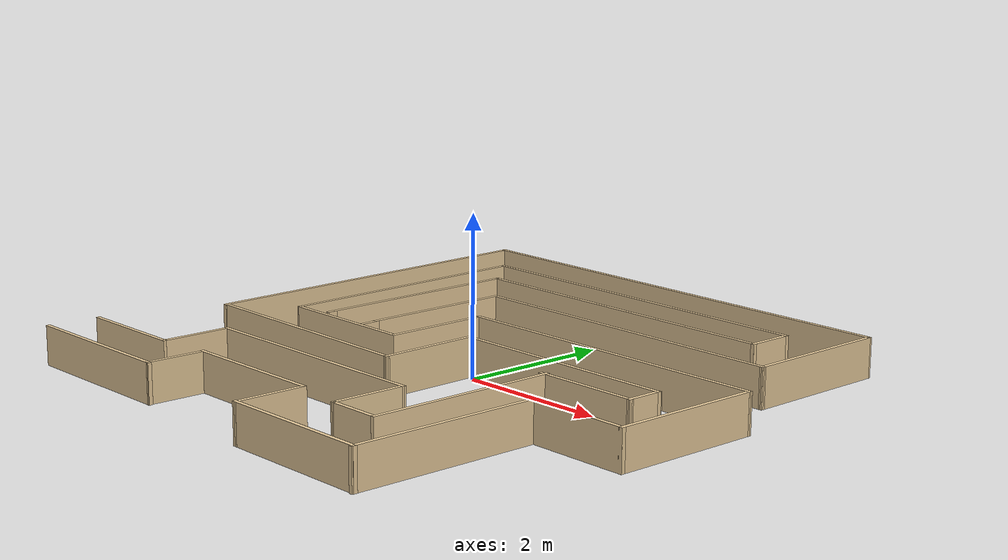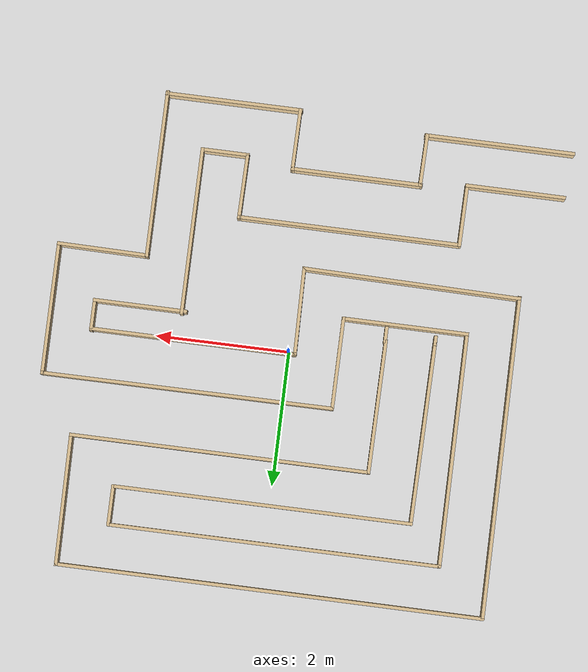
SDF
<?xml version='1.0'?>
<sdf version='1.7'>
  <model name='Maze_Project_II'>
    <pose>-0.116242 -0.016981 0 0 -0 0</pose>
    <link name='Wall_0'>
      <collision name='Wall_0_Collision'>
        <geometry>
          <box>
            <size>2.25 0.05 0.5</size>
          </box>
        </geometry>
        <pose>0 0 0.25 0 -0 0</pose>
      </collision>
      <visual name='Wall_0_Visual'>
        <pose>0 0 0.25 0 -0 0</pose>
        <geometry>
          <box>
            <size>2.25 0.05 0.5</size>
          </box>
        </geometry>
        <material>
          <script>
            <uri>file://media/materials/scripts/gazebo.material</uri>
            <name>Gazebo/Grey</name>
          </script>
          <ambient>0.921569 0.807843 0.615686 1</ambient>
        </material>
        <meta>
          <layer>0</layer>
        </meta>
      </visual>
      <pose>-2.60976 -3.43602 0 0 -0 0</pose>
    </link>
    <link name='Wall_1'>
      <collision name='Wall_1_Collision'>
        <geometry>
          <box>
            <size>0.796089 0.05 0.5</size>
          </box>
        </geometry>
        <pose>0 0 0.25 0 -0 0</pose>
      </collision>
      <visual name='Wall_1_Visual'>
        <pose>0 0 0.25 0 -0 0</pose>
        <geometry>
          <box>
            <size>0.796089 0.05 0.5</size>
          </box>
        </geometry>
        <material>
          <script>
            <uri>file://media/materials/scripts/gazebo.material</uri>
            <name>Gazebo/Grey</name>
          </script>
          <ambient>0.921569 0.807843 0.615686 1</ambient>
        </material>
        <meta>
          <layer>0</layer>
        </meta>
      </visual>
      <pose>-1.51551 -3.06302 0 0 -0 1.55538</pose>
    </link>
    <link name='Wall_10'>
      <collision name='Wall_10_Collision'>
        <geometry>
          <box>
            <size>1.9 0.05 0.5</size>
          </box>
        </geometry>
        <pose>0 0 0.25 0 -0 0</pose>
      </collision>
      <visual name='Wall_10_Visual'>
        <pose>0 0 0.25 0 -0 0</pose>
        <geometry>
          <box>
            <size>1.9 0.05 0.5</size>
          </box>
        </geometry>
        <material>
          <script>
            <uri>file://media/materials/scripts/gazebo.material</uri>
            <name>Gazebo/Grey</name>
          </script>
          <ambient>0.921569 0.807843 0.615686 1</ambient>
        </material>
        <meta>
          <layer>0</layer>
        </meta>
      </visual>
      <pose>-1.55376 -0.575019 0 0 -0 3.14159</pose>
    </link>
    <link name='Wall_12'>
      <collision name='Wall_12_Collision'>
        <geometry>
          <box>
            <size>3.5235 0.05 0.5</size>
          </box>
        </geometry>
        <pose>0 0 0.25 0 -0 0</pose>
      </collision>
      <visual name='Wall_12_Visual'>
        <pose>0 0 0.25 0 -0 0</pose>
        <geometry>
          <box>
            <size>3.5235 0.05 0.5</size>
          </box>
        </geometry>
        <material>
          <script>
            <uri>file://media/materials/scripts/gazebo.material</uri>
            <name>Gazebo/Grey</name>
          </script>
          <ambient>0.921569 0.807843 0.615686 1</ambient>
        </material>
        <meta>
          <layer>0</layer>
        </meta>
      </visual>
      <pose>-2.49026 1.16173 0 0 -0 1.57742</pose>
    </link>
    <link name='Wall_13'>
      <collision name='Wall_13_Collision'>
        <geometry>
          <box>
            <size>5 0.05 0.5</size>
          </box>
        </geometry>
        <pose>0 0 0.25 0 -0 0</pose>
      </collision>
      <visual name='Wall_13_Visual'>
        <pose>0 0 0.25 0 -0 0</pose>
        <geometry>
          <box>
            <size>5 0.05 0.5</size>
          </box>
        </geometry>
        <material>
          <script>
            <uri>file://media/materials/scripts/gazebo.material</uri>
            <name>Gazebo/Grey</name>
          </script>
          <ambient>0.921569 0.807843 0.615686 1</ambient>
        </material>
        <meta>
          <layer>0</layer>
        </meta>
      </visual>
      <pose>-0.026758 2.89848 0 0 -0 0</pose>
    </link>
    <link name='Wall_14'>
      <collision name='Wall_14_Collision'>
        <geometry>
          <box>
            <size>0.624115 0.05 0.5</size>
          </box>
        </geometry>
        <pose>0 0 0.25 0 -0 0</pose>
      </collision>
      <visual name='Wall_14_Visual'>
        <pose>0 0 0.25 0 -0 0</pose>
        <geometry>
          <box>
            <size>0.624115 0.05 0.5</size>
          </box>
        </geometry>
        <material>
          <script>
            <uri>file://media/materials/scripts/gazebo.material</uri>
            <name>Gazebo/Grey</name>
          </script>
          <ambient>0.921569 0.807843 0.615686 1</ambient>
        </material>
        <meta>
          <layer>0</layer>
        </meta>
      </visual>
      <pose>2.44824 2.61148 0 0 -0 -1.5708</pose>
    </link>
    <link name='Wall_15'>
      <collision name='Wall_15_Collision'>
        <geometry>
          <box>
            <size>4.5 0.05 0.5</size>
          </box>
        </geometry>
        <pose>0 0 0.25 0 -0 0</pose>
      </collision>
      <visual name='Wall_15_Visual'>
        <pose>0 0 0.25 0 -0 0</pose>
        <geometry>
          <box>
            <size>4.5 0.05 0.5</size>
          </box>
        </geometry>
        <material>
          <script>
            <uri>file://media/materials/scripts/gazebo.material</uri>
            <name>Gazebo/Grey</name>
          </script>
          <ambient>0.921569 0.807843 0.615686 1</ambient>
        </material>
        <meta>
          <layer>0</layer>
        </meta>
      </visual>
      <pose>0.223242 2.32473 0 0 -0 3.14148</pose>
    </link>
    <link name='Wall_16'>
      <collision name='Wall_16_Collision'>
        <geometry>
          <box>
            <size>2.74272 0.05 0.5</size>
          </box>
        </geometry>
        <pose>0 0 0.25 0 -0 0</pose>
      </collision>
      <visual name='Wall_16_Visual'>
        <pose>0 0 0.25 0 -0 0</pose>
        <geometry>
          <box>
            <size>2.74272 0.05 0.5</size>
          </box>
        </geometry>
        <material>
          <script>
            <uri>file://media/materials/scripts/gazebo.material</uri>
            <name>Gazebo/Grey</name>
          </script>
          <ambient>0.921569 0.807843 0.615686 1</ambient>
        </material>
        <meta>
          <layer>0</layer>
        </meta>
      </visual>
      <pose>-2.01326 0.978481 0 0 -0 -1.57934</pose>
    </link>
    <link name='Wall_18'>
      <collision name='Wall_18_Collision'>
        <geometry>
          <box>
            <size>1.5 0.05 0.5</size>
          </box>
        </geometry>
        <pose>0 0 0.25 0 -0 0</pose>
      </collision>
      <visual name='Wall_18_Visual'>
        <pose>0 0 0.25 0 -0 0</pose>
        <geometry>
          <box>
            <size>1.5 0.05 0.5</size>
          </box>
        </geometry>
        <material>
          <script>
            <uri>file://media/materials/scripts/gazebo.material</uri>
            <name>Gazebo/Grey</name>
          </script>
          <ambient>0.921569 0.807843 0.615686 1</ambient>
        </material>
        <meta>
          <layer>0</layer>
        </meta>
      </visual>
      <pose>-2.93076 -2.77002 0 0 -0 0</pose>
    </link>
    <link name='Wall_19'>
      <collision name='Wall_19_Collision'>
        <geometry>
          <box>
            <size>0.93152 0.05 0.5</size>
          </box>
        </geometry>
        <pose>0 0 0.25 0 -0 0</pose>
      </collision>
      <visual name='Wall_19_Visual'>
        <pose>0 0 0.25 0 -0 0</pose>
        <geometry>
          <box>
            <size>0.93152 0.05 0.5</size>
          </box>
        </geometry>
        <material>
          <script>
            <uri>file://media/materials/scripts/gazebo.material</uri>
            <name>Gazebo/Grey</name>
          </script>
          <ambient>0.921569 0.807843 0.615686 1</ambient>
        </material>
        <meta>
          <layer>0</layer>
        </meta>
      </visual>
      <pose>-2.20276 -2.31777 0 0 -0 1.56399</pose>
    </link>
    <link name='Wall_2'>
      <collision name='Wall_2_Collision'>
        <geometry>
          <box>
            <size>1.9655 0.05 0.5</size>
          </box>
        </geometry>
        <pose>0 0 0.25 0 -0 0</pose>
      </collision>
      <visual name='Wall_2_Visual'>
        <pose>0 0 0.25 0 -0 0</pose>
        <geometry>
          <box>
            <size>1.9655 0.05 0.5</size>
          </box>
        </geometry>
        <material>
          <script>
            <uri>file://media/materials/scripts/gazebo.material</uri>
            <name>Gazebo/Grey</name>
          </script>
          <ambient>0.921569 0.807843 0.615686 1</ambient>
        </material>
        <meta>
          <layer>0</layer>
        </meta>
      </visual>
      <pose>-0.563508 -2.69002 0 0 -0 0</pose>
    </link>
    <link name='Wall_20'>
      <collision name='Wall_20_Collision'>
        <geometry>
          <box>
            <size>3.3535 0.05 0.5</size>
          </box>
        </geometry>
        <pose>0 0 0.25 0 -0 0</pose>
      </collision>
      <visual name='Wall_20_Visual'>
        <pose>0 0 0.25 0 -0 0</pose>
        <geometry>
          <box>
            <size>3.3535 0.05 0.5</size>
          </box>
        </geometry>
        <material>
          <script>
            <uri>file://media/materials/scripts/gazebo.material</uri>
            <name>Gazebo/Grey</name>
          </script>
          <ambient>0.921569 0.807843 0.615686 1</ambient>
        </material>
        <meta>
          <layer>0</layer>
        </meta>
      </visual>
      <pose>-0.548008 -1.87702 0 0 -0 0</pose>
    </link>
    <link name='Wall_21'>
      <collision name='Wall_21_Collision'>
        <geometry>
          <box>
            <size>0.982571 0.05 0.5</size>
          </box>
        </geometry>
        <pose>0 0 0.25 0 -0 0</pose>
      </collision>
      <visual name='Wall_21_Visual'>
        <pose>0 0 0.25 0 -0 0</pose>
        <geometry>
          <box>
            <size>0.982571 0.05 0.5</size>
          </box>
        </geometry>
        <material>
          <script>
            <uri>file://media/materials/scripts/gazebo.material</uri>
            <name>Gazebo/Grey</name>
          </script>
          <ambient>0.921569 0.807843 0.615686 1</ambient>
        </material>
        <meta>
          <layer>0</layer>
        </meta>
      </visual>
      <pose>1.09799 -2.34327 0 0 -0 -1.58313</pose>
    </link>
    <link name='Wall_22'>
      <collision name='Wall_22_Collision'>
        <geometry>
          <box>
            <size>0.727 0.05 0.5</size>
          </box>
        </geometry>
        <pose>0 0 0.25 0 -0 0</pose>
      </collision>
      <visual name='Wall_22_Visual'>
        <pose>0 0 0.25 0 -0 0</pose>
        <geometry>
          <box>
            <size>0.727 0.05 0.5</size>
          </box>
        </geometry>
        <material>
          <script>
            <uri>file://media/materials/scripts/gazebo.material</uri>
            <name>Gazebo/Grey</name>
          </script>
          <ambient>0.921569 0.807843 0.615686 1</ambient>
        </material>
        <meta>
          <layer>0</layer>
        </meta>
      </visual>
      <pose>1.43074 -2.80952 0 0 -0 0</pose>
    </link>
    <link name='Wall_24'>
      <collision name='Wall_24_Collision'>
        <geometry>
          <box>
            <size>1.408 0.05 0.5</size>
          </box>
        </geometry>
        <pose>0 0 0.25 0 -0 0</pose>
      </collision>
      <visual name='Wall_24_Visual'>
        <pose>0 0 0.25 0 -0 0</pose>
        <geometry>
          <box>
            <size>1.408 0.05 0.5</size>
          </box>
        </geometry>
        <material>
          <script>
            <uri>file://media/materials/scripts/gazebo.material</uri>
            <name>Gazebo/Grey</name>
          </script>
          <ambient>0.921569 0.807843 0.615686 1</ambient>
        </material>
        <meta>
          <layer>0</layer>
        </meta>
      </visual>
      <pose>2.39324 -0.382769 0 0 -0 -0.000368</pose>
    </link>
    <link name='Wall_25'>
      <collision name='Wall_25_Collision'>
        <geometry>
          <box>
            <size>0.4885 0.05 0.5</size>
          </box>
        </geometry>
        <pose>0 0 0.25 0 -0 0</pose>
      </collision>
      <visual name='Wall_25_Visual'>
        <pose>0 0 0.25 0 -0 0</pose>
        <geometry>
          <box>
            <size>0.4885 0.05 0.5</size>
          </box>
        </geometry>
        <material>
          <script>
            <uri>file://media/materials/scripts/gazebo.material</uri>
            <name>Gazebo/Grey</name>
          </script>
          <ambient>0.921569 0.807843 0.615686 1</ambient>
        </material>
        <meta>
          <layer>0</layer>
        </meta>
      </visual>
      <pose>3.07224 -0.163769 0 0 -0 1.5708</pose>
    </link>
    <link name='Wall_26'>
      <collision name='Wall_26_Collision'>
        <geometry>
          <box>
            <size>3.1005 0.05 0.5</size>
          </box>
        </geometry>
        <pose>0 0 0.25 0 -0 0</pose>
      </collision>
      <visual name='Wall_26_Visual'>
        <pose>0 0 0.25 0 -0 0</pose>
        <geometry>
          <box>
            <size>3.1005 0.05 0.5</size>
          </box>
        </geometry>
        <material>
          <script>
            <uri>file://media/materials/scripts/gazebo.material</uri>
            <name>Gazebo/Grey</name>
          </script>
          <ambient>0.921569 0.807843 0.615686 1</ambient>
        </material>
        <meta>
          <layer>0</layer>
        </meta>
      </visual>
      <pose>1.54699 0.043981 0 0 -0 3.14159</pose>
    </link>
    <link name='Wall_27'>
      <collision name='Wall_27_Collision'>
        <geometry>
          <box>
            <size>1.33371 0.05 0.5</size>
          </box>
        </geometry>
        <pose>0 0 0.25 0 -0 0</pose>
      </collision>
      <visual name='Wall_27_Visual'>
        <pose>0 0 0.25 0 -0 0</pose>
        <geometry>
          <box>
            <size>1.33371 0.05 0.5</size>
          </box>
        </geometry>
        <material>
          <script>
            <uri>file://media/materials/scripts/gazebo.material</uri>
            <name>Gazebo/Grey</name>
          </script>
          <ambient>0.921569 0.807843 0.615686 1</ambient>
        </material>
        <meta>
          <layer>0</layer>
        </meta>
      </visual>
      <pose>0.033242 -0.597769 0 0 -0 -1.55288</pose>
    </link>
    <link name='Wall_28'>
      <collision name='Wall_28_Collision'>
        <geometry>
          <box>
            <size>3.28007 0.05 0.5</size>
          </box>
        </geometry>
        <pose>0 0 0.25 0 -0 0</pose>
      </collision>
      <visual name='Wall_28_Visual'>
        <pose>0 0 0.25 0 -0 0</pose>
        <geometry>
          <box>
            <size>3.28007 0.05 0.5</size>
          </box>
        </geometry>
        <material>
          <script>
            <uri>file://media/materials/scripts/gazebo.material</uri>
            <name>Gazebo/Grey</name>
          </script>
          <ambient>0.921569 0.807843 0.615686 1</ambient>
        </material>
        <meta>
          <layer>0</layer>
        </meta>
      </visual>
      <pose>-1.57026 -1.21777 0 0 -0 3.12813</pose>
    </link>
    <link name='Wall_3'>
      <collision name='Wall_3_Collision'>
        <geometry>
          <box>
            <size>0.931136 0.05 0.5</size>
          </box>
        </geometry>
        <pose>0 0 0.25 0 -0 0</pose>
      </collision>
      <visual name='Wall_3_Visual'>
        <pose>0 0 0.25 0 -0 0</pose>
        <geometry>
          <box>
            <size>0.931136 0.05 0.5</size>
          </box>
        </geometry>
        <material>
          <script>
            <uri>file://media/materials/scripts/gazebo.material</uri>
            <name>Gazebo/Grey</name>
          </script>
          <ambient>0.921569 0.807843 0.615686 1</ambient>
        </material>
        <meta>
          <layer>0</layer>
        </meta>
      </visual>
      <pose>0.401992 -3.13052 0 0 -0 -1.57931</pose>
    </link>
    <link name='Wall_31'>
      <collision name='Wall_31_Collision'>
        <geometry>
          <box>
            <size>6.42651 0.05 0.5</size>
          </box>
        </geometry>
        <pose>0 0 0.25 0 -0 0</pose>
      </collision>
      <visual name='Wall_31_Visual'>
        <pose>0 0 0.25 0 -0 0</pose>
        <geometry>
          <box>
            <size>6.42651 0.05 0.5</size>
          </box>
        </geometry>
        <material>
          <script>
            <uri>file://media/materials/scripts/gazebo.material</uri>
            <name>Gazebo/Grey</name>
          </script>
          <ambient>0.921569 0.807843 0.615686 1</ambient>
        </material>
        <meta>
          <layer>0</layer>
        </meta>
      </visual>
      <pose>-0.044008 3.58248 0 0 -0 -0.001725</pose>
    </link>
    <link name='Wall_32'>
      <collision name='Wall_32_Collision'>
        <geometry>
          <box>
            <size>1.98113 0.05 0.5</size>
          </box>
        </geometry>
        <pose>0 0 0.25 0 -0 0</pose>
      </collision>
      <visual name='Wall_32_Visual'>
        <pose>0 0 0.25 0 -0 0</pose>
        <geometry>
          <box>
            <size>1.98113 0.05 0.5</size>
          </box>
        </geometry>
        <material>
          <script>
            <uri>file://media/materials/scripts/gazebo.material</uri>
            <name>Gazebo/Grey</name>
          </script>
          <ambient>0.921569 0.807843 0.615686 1</ambient>
        </material>
        <meta>
          <layer>0</layer>
        </meta>
      </visual>
      <pose>3.15524 2.61148 0 0 -0 -1.5594</pose>
    </link>
    <link name='Wall_33'>
      <collision name='Wall_33_Collision'>
        <geometry>
          <box>
            <size>4.5 0.05 0.5</size>
          </box>
        </geometry>
        <pose>0 0 0.25 0 -0 0</pose>
      </collision>
      <visual name='Wall_33_Visual'>
        <pose>0 0 0.25 0 -0 0</pose>
        <geometry>
          <box>
            <size>4.5 0.05 0.5</size>
          </box>
        </geometry>
        <material>
          <script>
            <uri>file://media/materials/scripts/gazebo.material</uri>
            <name>Gazebo/Grey</name>
          </script>
          <ambient>0.921569 0.807843 0.615686 1</ambient>
        </material>
        <meta>
          <layer>0</layer>
        </meta>
      </visual>
      <pose>0.941242 1.64598 0 0 -0 3.14159</pose>
    </link>
    <link name='Wall_34'>
      <collision name='Wall_34_Collision'>
        <geometry>
          <box>
            <size>2.0115 0.05 0.5</size>
          </box>
        </geometry>
        <pose>0 0 0.25 0 -0 0</pose>
      </collision>
      <visual name='Wall_34_Visual'>
        <pose>0 0 0.25 0 -0 0</pose>
        <geometry>
          <box>
            <size>2.0115 0.05 0.5</size>
          </box>
        </geometry>
        <material>
          <script>
            <uri>file://media/materials/scripts/gazebo.material</uri>
            <name>Gazebo/Grey</name>
          </script>
          <ambient>0.921569 0.807843 0.615686 1</ambient>
        </material>
        <meta>
          <layer>0</layer>
        </meta>
      </visual>
      <pose>-1.28926 0.664981 0 0 -0 -1.5764</pose>
    </link>
    <link name='Wall_5'>
      <collision name='Wall_5_Collision'>
        <geometry>
          <box>
            <size>2.5 0.05 0.5</size>
          </box>
        </geometry>
        <pose>0 0 0.25 0 -0 0</pose>
      </collision>
      <visual name='Wall_5_Visual'>
        <pose>0 0 0.25 0 -0 0</pose>
        <geometry>
          <box>
            <size>2.5 0.05 0.5</size>
          </box>
        </geometry>
        <material>
          <script>
            <uri>file://media/materials/scripts/gazebo.material</uri>
            <name>Gazebo/Grey</name>
          </script>
          <ambient>0.921569 0.807843 0.615686 1</ambient>
        </material>
        <meta>
          <layer>0</layer>
        </meta>
      </visual>
      <pose>2.39099 -2.36302 0 0 -0 1.57059</pose>
    </link>
    <link name='Wall_56'>
      <collision name='Wall_56_Collision'>
        <geometry>
          <box>
            <size>2.0575 0.05 0.5</size>
          </box>
        </geometry>
        <pose>0 0 0.25 0 -0 0</pose>
      </collision>
      <visual name='Wall_56_Visual'>
        <pose>0 0 0.25 0 -0 0</pose>
        <geometry>
          <box>
            <size>2.0575 0.05 0.5</size>
          </box>
        </geometry>
        <material>
          <script>
            <uri>file://media/materials/scripts/gazebo.material</uri>
            <name>Gazebo/Grey</name>
          </script>
          <ambient>0.921569 0.807843 0.615686 1</ambient>
        </material>
        <meta>
          <layer>0</layer>
        </meta>
      </visual>
      <pose>1.39049 -3.57102 0 0 -0 0</pose>
    </link>
    <link name='Wall_6'>
      <collision name='Wall_6_Collision'>
        <geometry>
          <box>
            <size>1.36858 0.05 0.5</size>
          </box>
        </geometry>
        <pose>0 0 0.25 0 -0 0</pose>
      </collision>
      <visual name='Wall_6_Visual'>
        <pose>0 0 0.25 0 -0 0</pose>
        <geometry>
          <box>
            <size>1.36858 0.05 0.5</size>
          </box>
        </geometry>
        <material>
          <script>
            <uri>file://media/materials/scripts/gazebo.material</uri>
            <name>Gazebo/Grey</name>
          </script>
          <ambient>0.921569 0.807843 0.615686 1</ambient>
        </material>
        <meta>
          <layer>0</layer>
        </meta>
      </visual>
      <pose>3.05024 -1.14502 0 0 -0 -0.010622</pose>
    </link>
    <link name='Wall_60'>
      <collision name='Wall_60_Collision'>
        <geometry>
          <box>
            <size>2.5 0.05 0.5</size>
          </box>
        </geometry>
        <pose>0 0 0.25 0 -0 0</pose>
      </collision>
      <visual name='Wall_60_Visual'>
        <pose>0 0 0.25 0 -0 0</pose>
        <geometry>
          <box>
            <size>2.5 0.05 0.5</size>
          </box>
        </geometry>
        <material>
          <script>
            <uri>file://media/materials/scripts/gazebo.material</uri>
            <name>Gazebo/Grey</name>
          </script>
          <ambient>0.921569 0.807843 0.615686 1</ambient>
        </material>
        <meta>
          <layer>0</layer>
        </meta>
      </visual>
      <pose>1.76924 -1.58452 0 0 -0 1.5708</pose>
    </link>
    <link name='Wall_7'>
      <collision name='Wall_7_Collision'>
        <geometry>
          <box>
            <size>1.9885 0.05 0.5</size>
          </box>
        </geometry>
        <pose>0 0 0.25 0 -0 0</pose>
      </collision>
      <visual name='Wall_7_Visual'>
        <pose>0 0 0.25 0 -0 0</pose>
        <geometry>
          <box>
            <size>1.9885 0.05 0.5</size>
          </box>
        </geometry>
        <material>
          <script>
            <uri>file://media/materials/scripts/gazebo.material</uri>
            <name>Gazebo/Grey</name>
          </script>
          <ambient>0.921569 0.807843 0.615686 1</ambient>
        </material>
        <meta>
          <layer>0</layer>
        </meta>
      </visual>
      <pose>3.70924 -0.182519 0 0 -0 1.5708</pose>
    </link>
    <link name='Wall_73'>
      <collision name='Wall_73_Collision'>
        <geometry>
          <box>
            <size>4.83423 0.05 0.5</size>
          </box>
        </geometry>
        <pose>0 0 0.25 0 -0 0</pose>
      </collision>
      <visual name='Wall_73_Visual'>
        <pose>0 0 0.25 0 -0 0</pose>
        <geometry>
          <box>
            <size>4.83423 0.05 0.5</size>
          </box>
        </geometry>
        <material>
          <script>
            <uri>file://media/materials/scripts/gazebo.material</uri>
            <name>Gazebo/Grey</name>
          </script>
          <ambient>0.921569 0.807843 0.615686 1</ambient>
        </material>
        <meta>
          <layer>0</layer>
        </meta>
      </visual>
      <pose>-3.20876 1.18448 0 0 -0 1.58062</pose>
    </link>
    <link name='Wall_8'>
      <collision name='Wall_8_Collision'>
        <geometry>
          <box>
            <size>4.38802 0.05 0.5</size>
          </box>
        </geometry>
        <pose>0 0 0.25 0 -0 0</pose>
      </collision>
      <visual name='Wall_8_Visual'>
        <pose>0 0 0.25 0 -0 0</pose>
        <geometry>
          <box>
            <size>4.38802 0.05 0.5</size>
          </box>
        </geometry>
        <material>
          <script>
            <uri>file://media/materials/scripts/gazebo.material</uri>
            <name>Gazebo/Grey</name>
          </script>
          <ambient>0.921569 0.807843 0.615686 1</ambient>
        </material>
        <meta>
          <layer>0</layer>
        </meta>
      </visual>
      <pose>1.54024 0.780981 0 0 -0 -3.13883</pose>
    </link>
    <link name='Wall_9'>
      <collision name='Wall_9_Collision'>
        <geometry>
          <box>
            <size>1.4 0.05 0.5</size>
          </box>
        </geometry>
        <pose>0 0 0.25 0 -0 0</pose>
      </collision>
      <visual name='Wall_9_Visual'>
        <pose>0 0 0.25 0 -0 0</pose>
        <geometry>
          <box>
            <size>1.4 0.05 0.5</size>
          </box>
        </geometry>
        <material>
          <script>
            <uri>file://media/materials/scripts/gazebo.material</uri>
            <name>Gazebo/Grey</name>
          </script>
          <ambient>0.921569 0.807843 0.615686 1</ambient>
        </material>
        <meta>
          <layer>0</layer>
        </meta>
      </visual>
      <pose>-0.628758 0.099981 0 0 -0 -1.5708</pose>
    </link>
    <link name='Wall_91'>
      <collision name='Wall_91_Collision'>
        <geometry>
          <box>
            <size>0.25 0.05 0.5</size>
          </box>
        </geometry>
        <pose>0 0 0.25 0 -0 0</pose>
      </collision>
      <visual name='Wall_91_Visual'>
        <pose>0 0 0.25 0 -0 0</pose>
        <geometry>
          <box>
            <size>0.25 0.05 0.5</size>
          </box>
        </geometry>
        <material>
          <script>
            <uri>file://media/materials/scripts/gazebo.material</uri>
            <name>Gazebo/Grey</name>
          </script>
          <ambient>0.921569 0.807843 0.615686 1</ambient>
        </material>
        <meta>
          <layer>0</layer>
        </meta>
      </visual>
      <pose>-1.28326 -0.416019 0 0 -0 -1.5708</pose>
    </link>
    <link name='Wall_93'>
      <collision name='Wall_93_Collision'>
        <geometry>
          <box>
            <size>0.15 0.05 0.5</size>
          </box>
        </geometry>
        <pose>0 0 0.25 0 -0 0</pose>
      </collision>
      <visual name='Wall_93_Visual'>
        <pose>0 0 0.25 0 -0 0</pose>
        <geometry>
          <box>
            <size>0.15 0.05 0.5</size>
          </box>
        </geometry>
        <material>
          <script>
            <uri>file://media/materials/scripts/gazebo.material</uri>
            <name>Gazebo/Grey</name>
          </script>
          <ambient>0.921569 0.807843 0.615686 1</ambient>
        </material>
        <meta>
          <layer>0</layer>
        </meta>
      </visual>
      <pose>-2.02476 -0.418019 0 0 -0 -1.5708</pose>
    </link>
    <static>1</static>
  </model>
</sdf>
